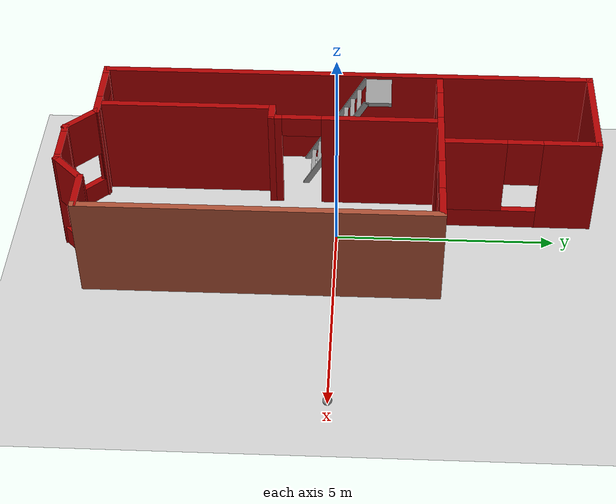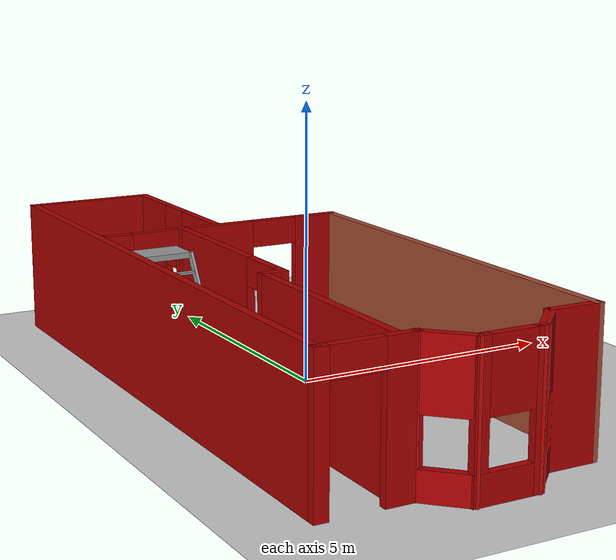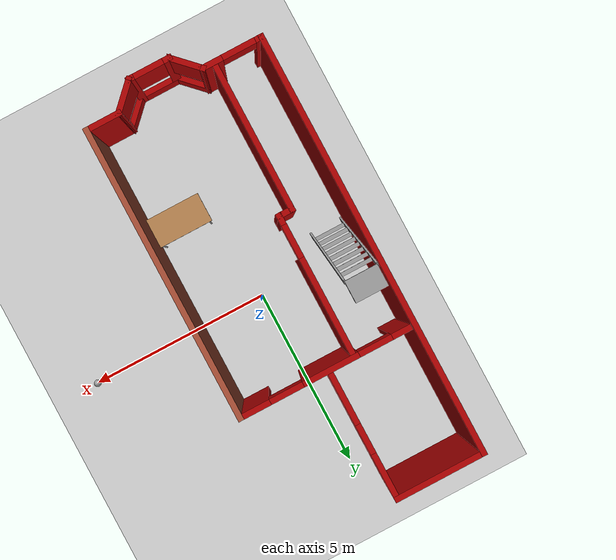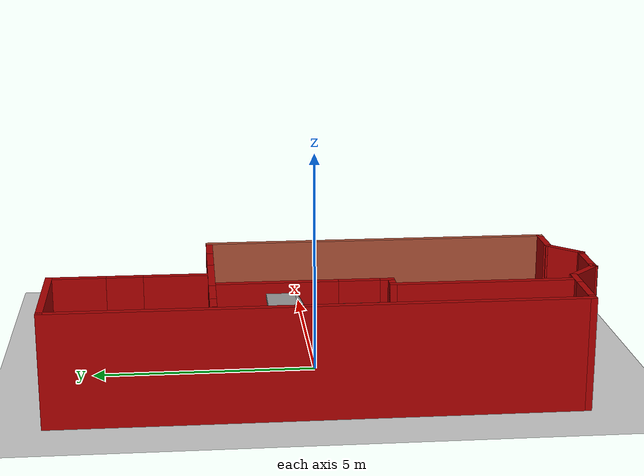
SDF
<sdf version="1.4">
 <world name="default">
  <include><uri>model://ground_plane</uri></include>
  <light type="directional" name="sun_high">
   <pose>0 0 10 0 -0.5 0</pose>
   <diffuse>0.8 0.8 0.8 1</diffuse>
   <specular>0.2 0.2 0.2 1</specular>
   <attenuation>
    <range>1000</range>
    <constant>0.9</constant>
    <linear>0.01</linear>
    <quadratic>0.001</quadratic>
   </attenuation>
   <direction>-0.5 0.1 -0.9</direction>
  </light>
  <include><uri>model://building_downstairs</uri></include>
  <include><uri>model://table</uri><static>true</static><pose>0.969 -2.728 0 0 0 0</pose></include>
  <include>
   <uri>model://ladder_60deg_0rails</uri>
   <static>true</static>
   <pose>-2.386 -0.795 0 0 0 0</pose>
  </include>
  <include><name>obstacle1</name><uri>model://whirly_obstacle</uri><pose>0 -0.8 0 0 0 0</pose></include>
  <include><name>obstacle2</name><uri>model://whirly_obstacle</uri><pose>-0.69 -2.45 0 0 0 0</pose></include>
  <include><uri>model://my_ball</uri><pose>5 0 0 0 0 0</pose></include>
 </world>
</sdf>

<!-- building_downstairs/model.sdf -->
<sdf version='1.6'>
  <model name='building_downstairs'>
    <pose frame=''>-0.558499 -0.181364 0 0 -0 0</pose>
    <link name='Wall_0'>
      <collision name='Wall_0_Collision'>
        <geometry>
          <box>
            <size>8 0.15 2.5</size>
          </box>
        </geometry>
        <pose frame=''>0 0 1.25 0 -0 0</pose>
      </collision>
      <visual name='Wall_0_Visual'>
        <pose frame=''>0 0 1.25 0 -0 0</pose>
        <geometry>
          <box>
            <size>8 0.15 2.5</size>
          </box>
        </geometry>
        <material>
          <script>
            <uri>file://media/materials/scripts/gazebo.material</uri>
            <name>Gazebo/Bricks</name>
          </script>
          <ambient>1 1 1 1</ambient>
        </material>
        <meta>
          <layer>0</layer>
        </meta>
      </visual>
      <pose frame=''>2.38842 -1.43226 0 0 0 -1.5708</pose>
    </link>
    <link name='Wall_1'>
      <collision name='Wall_1_Collision'>
        <geometry>
          <box>
            <size>1.01154 0.15 2.5</size>
          </box>
        </geometry>
        <pose frame=''>0 0 1.25 0 -0 0</pose>
      </collision>
      <visual name='Wall_1_Visual'>
        <pose frame=''>0 0 1.25 0 -0 0</pose>
        <geometry>
          <box>
            <size>1.01154 0.15 2.5</size>
          </box>
        </geometry>
        <material>
          <script>
            <uri>file://media/materials/scripts/gazebo.material</uri>
            <name>Gazebo/Grey</name>
          </script>
          <ambient>0.666667 0 0 1</ambient>
        </material>
        <meta>
          <layer>0</layer>
        </meta>
      </visual>
      <pose frame=''>1.94443 -5.3581 0 0 0 -3.13963</pose>
    </link>
    <link name='Wall_11'>
      <pose frame=''>0.088421 2.49274 0 0 -0 3.14159</pose>
      <visual name='Wall_11_Visual_0'>
        <pose frame=''>-1.92602 0 1.25 0 -0 0</pose>
        <geometry>
          <box>
            <size>0.897963 0.15 2.5</size>
          </box>
        </geometry>
        <material>
          <script>
            <uri>file://media/materials/scripts/gazebo.material</uri>
            <name>Gazebo/Grey</name>
          </script>
          <ambient>0.666667 0 0 1</ambient>
        </material>
        <meta>
          <layer>0</layer>
        </meta>
      </visual>
      <collision name='Wall_11_Collision_0'>
        <geometry>
          <box>
            <size>0.897963 0.15 2.5</size>
          </box>
        </geometry>
        <pose frame=''>-1.92602 0 1.25 0 -0 0</pose>
      </collision>
      <visual name='Wall_11_Visual_1'>
        <pose frame=''>0.186164 0 1.25 0 -0 0</pose>
        <geometry>
          <box>
            <size>1.5264 0.15 2.5</size>
          </box>
        </geometry>
        <material>
          <script>
            <uri>file://media/materials/scripts/gazebo.material</uri>
            <name>Gazebo/Grey</name>
          </script>
          <ambient>0.666667 0 0 1</ambient>
        </material>
        <meta>
          <layer>0</layer>
        </meta>
      </visual>
      <collision name='Wall_11_Collision_1'>
        <geometry>
          <box>
            <size>1.5264 0.15 2.5</size>
          </box>
        </geometry>
        <pose frame=''>0.186164 0 1.25 0 -0 0</pose>
      </collision>
      <visual name='Wall_11_Visual_2'>
        <pose frame=''>2.11218 0 1.25 0 -0 0</pose>
        <geometry>
          <box>
            <size>0.525634 0.15 2.5</size>
          </box>
        </geometry>
        <material>
          <script>
            <uri>file://media/materials/scripts/gazebo.material</uri>
            <name>Gazebo/Grey</name>
          </script>
          <ambient>0.666667 0 0 1</ambient>
        </material>
        <meta>
          <layer>0</layer>
        </meta>
      </visual>
      <collision name='Wall_11_Collision_2'>
        <geometry>
          <box>
            <size>0.525634 0.15 2.5</size>
          </box>
        </geometry>
        <pose frame=''>2.11218 0 1.25 0 -0 0</pose>
      </collision>
      <visual name='Wall_11_Visual_3'>
        <pose frame=''>-1.02704 0 2.25 0 -0 0</pose>
        <geometry>
          <box>
            <size>0.9 0.15 0.5</size>
          </box>
        </geometry>
        <material>
          <script>
            <uri>file://media/materials/scripts/gazebo.material</uri>
            <name>Gazebo/Grey</name>
          </script>
          <ambient>0.666667 0 0 1</ambient>
        </material>
        <meta>
          <layer>0</layer>
        </meta>
      </visual>
      <collision name='Wall_11_Collision_3'>
        <geometry>
          <box>
            <size>0.9 0.15 0.5</size>
          </box>
        </geometry>
        <pose frame=''>-1.02704 0 2.25 0 -0 0</pose>
      </collision>
      <visual name='Wall_11_Visual_4'>
        <pose frame=''>1.39937 0 2.25 0 -0 0</pose>
        <geometry>
          <box>
            <size>0.9 0.15 0.5</size>
          </box>
        </geometry>
        <material>
          <script>
            <uri>file://media/materials/scripts/gazebo.material</uri>
            <name>Gazebo/Grey</name>
          </script>
          <ambient>0.666667 0 0 1</ambient>
        </material>
        <meta>
          <layer>0</layer>
        </meta>
      </visual>
      <collision name='Wall_11_Collision_4'>
        <geometry>
          <box>
            <size>0.9 0.15 0.5</size>
          </box>
        </geometry>
        <pose frame=''>1.39937 0 2.25 0 -0 0</pose>
      </collision>
    </link>
    <link name='Wall_13'>
      <pose frame=''>-0.73199 0.568977 0 0 0 -1.5708</pose>
      <visual name='Wall_13_Visual_0'>
        <pose frame=''>-0.607949 0 1.25 0 -0 0</pose>
        <geometry>
          <box>
            <size>2.7841 0.15 2.5</size>
          </box>
        </geometry>
        <material>
          <script>
            <uri>file://media/materials/scripts/gazebo.material</uri>
            <name>Gazebo/Grey</name>
          </script>
          <ambient>0.666667 0 0 1</ambient>
        </material>
        <meta>
          <layer>0</layer>
        </meta>
      </visual>
      <collision name='Wall_13_Collision_0'>
        <geometry>
          <box>
            <size>2.7841 0.15 2.5</size>
          </box>
        </geometry>
        <pose frame=''>-0.607949 0 1.25 0 -0 0</pose>
      </collision>
      <visual name='Wall_13_Visual_1'>
        <pose frame=''>1.84205 0 1.25 0 -0 0</pose>
        <geometry>
          <box>
            <size>0.315898 0.15 2.5</size>
          </box>
        </geometry>
        <material>
          <script>
            <uri>file://media/materials/scripts/gazebo.material</uri>
            <name>Gazebo/Grey</name>
          </script>
          <ambient>0.666667 0 0 1</ambient>
        </material>
        <meta>
          <layer>0</layer>
        </meta>
      </visual>
      <collision name='Wall_13_Collision_1'>
        <geometry>
          <box>
            <size>0.315898 0.15 2.5</size>
          </box>
        </geometry>
        <pose frame=''>1.84205 0 1.25 0 -0 0</pose>
      </collision>
      <visual name='Wall_13_Visual_2'>
        <pose frame=''>1.2341 0 2.25 0 -0 0</pose>
        <geometry>
          <box>
            <size>0.9 0.15 0.5</size>
          </box>
        </geometry>
        <material>
          <script>
            <uri>file://media/materials/scripts/gazebo.material</uri>
            <name>Gazebo/Grey</name>
          </script>
          <ambient>0.666667 0 0 1</ambient>
        </material>
        <meta>
          <layer>0</layer>
        </meta>
      </visual>
      <collision name='Wall_13_Collision_2'>
        <geometry>
          <box>
            <size>0.9 0.15 0.5</size>
          </box>
        </geometry>
        <pose frame=''>1.2341 0 2.25 0 -0 0</pose>
      </collision>
    </link>
    <link name='Wall_14'>
      <collision name='Wall_14_Collision'>
        <geometry>
          <box>
            <size>0.5 0.15 2.5</size>
          </box>
        </geometry>
        <pose frame=''>0 0 1.25 0 -0 0</pose>
      </collision>
      <visual name='Wall_14_Visual'>
        <pose frame=''>0 0 1.25 0 -0 0</pose>
        <geometry>
          <box>
            <size>0.5 0.15 2.5</size>
          </box>
        </geometry>
        <material>
          <script>
            <uri>file://media/materials/scripts/gazebo.material</uri>
            <name>Gazebo/Grey</name>
          </script>
          <ambient>0.666667 0 0 1</ambient>
        </material>
        <meta>
          <layer>0</layer>
        </meta>
      </visual>
      <pose frame=''>-0.90699 -1.35602 0 0 -0 3.14159</pose>
    </link>
    <link name='Wall_15'>
      <collision name='Wall_15_Collision'>
        <geometry>
          <box>
            <size>4 0.15 2.5</size>
          </box>
        </geometry>
        <pose frame=''>0 0 1.25 0 -0 0</pose>
      </collision>
      <visual name='Wall_15_Visual'>
        <pose frame=''>0 0 1.25 0 -0 0</pose>
        <geometry>
          <box>
            <size>4 0.15 2.5</size>
          </box>
        </geometry>
        <material>
          <script>
            <uri>file://media/materials/scripts/gazebo.material</uri>
            <name>Gazebo/Grey</name>
          </script>
          <ambient>0.666667 0 0 1</ambient>
        </material>
        <meta>
          <layer>0</layer>
        </meta>
      </visual>
      <pose frame=''>-1.08199 -3.28102 0 0 0 -1.5708</pose>
    </link>
    <link name='Wall_2'>
      <pose frame=''>1.21314 -5.65947 0 0 0 -2.35619</pose>
      <visual name='Wall_2_Visual_0'>
        <pose frame=''>-0.446339 0 1.25 0 -0 0</pose>
        <geometry>
          <box>
            <size>0.107323 0.15 2.5</size>
          </box>
        </geometry>
        <material>
          <script>
            <uri>file://media/materials/scripts/gazebo.material</uri>
            <name>Gazebo/Grey</name>
          </script>
          <ambient>0.666667 0 0 1</ambient>
        </material>
        <meta>
          <layer>0</layer>
        </meta>
      </visual>
      <collision name='Wall_2_Collision_0'>
        <geometry>
          <box>
            <size>0.107323 0.15 2.5</size>
          </box>
        </geometry>
        <pose frame=''>-0.446339 0 1.25 0 -0 0</pose>
      </collision>
      <visual name='Wall_2_Visual_1'>
        <pose frame=''>0.053661 0 0.25 0 -0 0</pose>
        <geometry>
          <box>
            <size>0.892677 0.15 0.5</size>
          </box>
        </geometry>
        <material>
          <script>
            <uri>file://media/materials/scripts/gazebo.material</uri>
            <name>Gazebo/Grey</name>
          </script>
          <ambient>0.666667 0 0 1</ambient>
        </material>
        <meta>
          <layer>0</layer>
        </meta>
      </visual>
      <collision name='Wall_2_Collision_1'>
        <geometry>
          <box>
            <size>0.892677 0.15 0.5</size>
          </box>
        </geometry>
        <pose frame=''>0.053661 0 0.25 0 -0 0</pose>
      </collision>
      <visual name='Wall_2_Visual_2'>
        <pose frame=''>0.453661 0 1.5 0 -0 0</pose>
        <geometry>
          <box>
            <size>0.092677 0.15 2</size>
          </box>
        </geometry>
        <material>
          <script>
            <uri>file://media/materials/scripts/gazebo.material</uri>
            <name>Gazebo/Grey</name>
          </script>
          <ambient>0.666667 0 0 1</ambient>
        </material>
        <meta>
          <layer>0</layer>
        </meta>
      </visual>
      <collision name='Wall_2_Collision_2'>
        <geometry>
          <box>
            <size>0.092677 0.15 2</size>
          </box>
        </geometry>
        <pose frame=''>0.453661 0 1.5 0 -0 0</pose>
      </collision>
      <visual name='Wall_2_Visual_3'>
        <pose frame=''>0.007323 0 1.9 0 -0 0</pose>
        <geometry>
          <box>
            <size>0.8 0.15 1.2</size>
          </box>
        </geometry>
        <material>
          <script>
            <uri>file://media/materials/scripts/gazebo.material</uri>
            <name>Gazebo/Grey</name>
          </script>
          <ambient>0.666667 0 0 1</ambient>
        </material>
        <meta>
          <layer>0</layer>
        </meta>
      </visual>
      <collision name='Wall_2_Collision_3'>
        <geometry>
          <box>
            <size>0.8 0.15 1.2</size>
          </box>
        </geometry>
        <pose frame=''>0.007323 0 1.9 0 -0 0</pose>
      </collision>
    </link>
    <link name='Wall_3'>
      <pose frame=''>0.36262 -5.95999 0 0 -0 3.14159</pose>
      <visual name='Wall_3_Visual_0'>
        <pose frame=''>-0.521836 0 1.25 0 -0 0</pose>
        <geometry>
          <box>
            <size>0.206328 0.15 2.5</size>
          </box>
        </geometry>
        <material>
          <script>
            <uri>file://media/materials/scripts/gazebo.material</uri>
            <name>Gazebo/Grey</name>
          </script>
          <ambient>0.666667 0 0 1</ambient>
        </material>
        <meta>
          <layer>0</layer>
        </meta>
      </visual>
      <collision name='Wall_3_Collision_0'>
        <geometry>
          <box>
            <size>0.206328 0.15 2.5</size>
          </box>
        </geometry>
        <pose frame=''>-0.521836 0 1.25 0 -0 0</pose>
      </collision>
      <visual name='Wall_3_Visual_1'>
        <pose frame=''>0.103164 0 0.25 0 -0 0</pose>
        <geometry>
          <box>
            <size>1.04367 0.15 0.5</size>
          </box>
        </geometry>
        <material>
          <script>
            <uri>file://media/materials/scripts/gazebo.material</uri>
            <name>Gazebo/Grey</name>
          </script>
          <ambient>0.666667 0 0 1</ambient>
        </material>
        <meta>
          <layer>0</layer>
        </meta>
      </visual>
      <collision name='Wall_3_Collision_1'>
        <geometry>
          <box>
            <size>1.04367 0.15 0.5</size>
          </box>
        </geometry>
        <pose frame=''>0.103164 0 0.25 0 -0 0</pose>
      </collision>
      <visual name='Wall_3_Visual_2'>
        <pose frame=''>0.503164 0 1.5 0 -0 0</pose>
        <geometry>
          <box>
            <size>0.243672 0.15 2</size>
          </box>
        </geometry>
        <material>
          <script>
            <uri>file://media/materials/scripts/gazebo.material</uri>
            <name>Gazebo/Grey</name>
          </script>
          <ambient>0.666667 0 0 1</ambient>
        </material>
        <meta>
          <layer>0</layer>
        </meta>
      </visual>
      <collision name='Wall_3_Collision_2'>
        <geometry>
          <box>
            <size>0.243672 0.15 2</size>
          </box>
        </geometry>
        <pose frame=''>0.503164 0 1.5 0 -0 0</pose>
      </collision>
      <visual name='Wall_3_Visual_3'>
        <pose frame=''>-0.018672 0 1.9 0 -0 0</pose>
        <geometry>
          <box>
            <size>0.8 0.15 1.2</size>
          </box>
        </geometry>
        <material>
          <script>
            <uri>file://media/materials/scripts/gazebo.material</uri>
            <name>Gazebo/Grey</name>
          </script>
          <ambient>0.666667 0 0 1</ambient>
        </material>
        <meta>
          <layer>0</layer>
        </meta>
      </visual>
      <collision name='Wall_3_Collision_3'>
        <geometry>
          <box>
            <size>0.8 0.15 1.2</size>
          </box>
        </geometry>
        <pose frame=''>-0.018672 0 1.9 0 -0 0</pose>
      </collision>
    </link>
    <link name='Wall_4'>
      <pose frame=''>-0.4879 -5.65947 0 0 -0 2.35619</pose>
      <visual name='Wall_4_Visual_0'>
        <pose frame=''>-0.466865 0 1.25 0 -0 0</pose>
        <geometry>
          <box>
            <size>0.066271 0.15 2.5</size>
          </box>
        </geometry>
        <material>
          <script>
            <uri>file://media/materials/scripts/gazebo.material</uri>
            <name>Gazebo/Grey</name>
          </script>
          <ambient>0.666667 0 0 1</ambient>
        </material>
        <meta>
          <layer>0</layer>
        </meta>
      </visual>
      <collision name='Wall_4_Collision_0'>
        <geometry>
          <box>
            <size>0.066271 0.15 2.5</size>
          </box>
        </geometry>
        <pose frame=''>-0.466865 0 1.25 0 -0 0</pose>
      </collision>
      <visual name='Wall_4_Visual_1'>
        <pose frame=''>0.033135 0 0.25 0 -0 0</pose>
        <geometry>
          <box>
            <size>0.933729 0.15 0.5</size>
          </box>
        </geometry>
        <material>
          <script>
            <uri>file://media/materials/scripts/gazebo.material</uri>
            <name>Gazebo/Grey</name>
          </script>
          <ambient>0.666667 0 0 1</ambient>
        </material>
        <meta>
          <layer>0</layer>
        </meta>
      </visual>
      <collision name='Wall_4_Collision_1'>
        <geometry>
          <box>
            <size>0.933729 0.15 0.5</size>
          </box>
        </geometry>
        <pose frame=''>0.033135 0 0.25 0 -0 0</pose>
      </collision>
      <visual name='Wall_4_Visual_2'>
        <pose frame=''>0.433135 0 1.5 0 -0 0</pose>
        <geometry>
          <box>
            <size>0.133729 0.15 2</size>
          </box>
        </geometry>
        <material>
          <script>
            <uri>file://media/materials/scripts/gazebo.material</uri>
            <name>Gazebo/Grey</name>
          </script>
          <ambient>0.666667 0 0 1</ambient>
        </material>
        <meta>
          <layer>0</layer>
        </meta>
      </visual>
      <collision name='Wall_4_Collision_2'>
        <geometry>
          <box>
            <size>0.133729 0.15 2</size>
          </box>
        </geometry>
        <pose frame=''>0.433135 0 1.5 0 -0 0</pose>
      </collision>
      <visual name='Wall_4_Visual_3'>
        <pose frame=''>-0.033729 0 1.9 0 -0 0</pose>
        <geometry>
          <box>
            <size>0.8 0.15 1.2</size>
          </box>
        </geometry>
        <material>
          <script>
            <uri>file://media/materials/scripts/gazebo.material</uri>
            <name>Gazebo/Grey</name>
          </script>
          <ambient>0.666667 0 0 1</ambient>
        </material>
        <meta>
          <layer>0</layer>
        </meta>
      </visual>
      <collision name='Wall_4_Collision_3'>
        <geometry>
          <box>
            <size>0.8 0.15 1.2</size>
          </box>
        </geometry>
        <pose frame=''>-0.033729 0 1.9 0 -0 0</pose>
      </collision>
    </link>
    <link name='Wall_5'>
      <pose frame=''>-1.58842 -5.35895 0 0 -0 3.14159</pose>
      <visual name='Wall_5_Visual_0'>
        <pose frame=''>-0.574229 0 1.25 0 -0 0</pose>
        <geometry>
          <box>
            <size>0.601543 0.15 2.5</size>
          </box>
        </geometry>
        <material>
          <script>
            <uri>file://media/materials/scripts/gazebo.material</uri>
            <name>Gazebo/Grey</name>
          </script>
          <ambient>0.666667 0 0 1</ambient>
        </material>
        <meta>
          <layer>0</layer>
        </meta>
      </visual>
      <collision name='Wall_5_Collision_0'>
        <geometry>
          <box>
            <size>0.601543 0.15 2.5</size>
          </box>
        </geometry>
        <pose frame=''>-0.574229 0 1.25 0 -0 0</pose>
      </collision>
      <visual name='Wall_5_Visual_1'>
        <pose frame=''>0.750771 0 1.25 0 -0 0</pose>
        <geometry>
          <box>
            <size>0.248457 0.15 2.5</size>
          </box>
        </geometry>
        <material>
          <script>
            <uri>file://media/materials/scripts/gazebo.material</uri>
            <name>Gazebo/Grey</name>
          </script>
          <ambient>0.666667 0 0 1</ambient>
        </material>
        <meta>
          <layer>0</layer>
        </meta>
      </visual>
      <collision name='Wall_5_Collision_1'>
        <geometry>
          <box>
            <size>0.248457 0.15 2.5</size>
          </box>
        </geometry>
        <pose frame=''>0.750771 0 1.25 0 -0 0</pose>
      </collision>
      <visual name='Wall_5_Visual_2'>
        <pose frame=''>0.176543 0 2.25 0 -0 0</pose>
        <geometry>
          <box>
            <size>0.9 0.15 0.5</size>
          </box>
        </geometry>
        <material>
          <script>
            <uri>file://media/materials/scripts/gazebo.material</uri>
            <name>Gazebo/Grey</name>
          </script>
          <ambient>0.666667 0 0 1</ambient>
        </material>
        <meta>
          <layer>0</layer>
        </meta>
      </visual>
      <collision name='Wall_5_Collision_2'>
        <geometry>
          <box>
            <size>0.9 0.15 0.5</size>
          </box>
        </geometry>
        <pose frame=''>0.176543 0 2.25 0 -0 0</pose>
      </collision>
    </link>
    <link name='Wall_6'>
      <collision name='Wall_6_Collision'>
        <geometry>
          <box>
            <size>11.5 0.15 2.5</size>
          </box>
        </geometry>
        <pose frame=''>0 0 1.25 0 -0 0</pose>
      </collision>
      <visual name='Wall_6_Visual'>
        <pose frame=''>0 0 1.25 0 -0 0</pose>
        <geometry>
          <box>
            <size>11.5 0.15 2.5</size>
          </box>
        </geometry>
        <material>
          <script>
            <uri>file://media/materials/scripts/gazebo.material</uri>
            <name>Gazebo/Grey</name>
          </script>
          <ambient>0.666667 0 0 1</ambient>
        </material>
        <meta>
          <layer>0</layer>
        </meta>
      </visual>
      <pose frame=''>-2.38842 0.316053 0 0 -0 1.5708</pose>
    </link>
    <link name='Wall_7'>
      <collision name='Wall_7_Collision'>
        <geometry>
          <box>
            <size>2.5 0.15 2.5</size>
          </box>
        </geometry>
        <pose frame=''>0 0 1.25 0 -0 0</pose>
      </collision>
      <visual name='Wall_7_Visual'>
        <pose frame=''>0 0 1.25 0 -0 0</pose>
        <geometry>
          <box>
            <size>2.5 0.15 2.5</size>
          </box>
        </geometry>
        <material>
          <script>
            <uri>file://media/materials/scripts/gazebo.material</uri>
            <name>Gazebo/Grey</name>
          </script>
          <ambient>0.666667 0 0 1</ambient>
        </material>
        <meta>
          <layer>0</layer>
        </meta>
      </visual>
      <pose frame=''>-1.21342 5.99105 0 0 -0 0</pose>
    </link>
    <link name='Wall_8'>
      <pose frame=''>-0.03842 4.31605 0 0 0 -1.5708</pose>
      <visual name='Wall_8_Visual_0'>
        <pose frame=''>-1.0977 0 1.25 0 -0 0</pose>
        <geometry>
          <box>
            <size>1.30459 0.15 2.5</size>
          </box>
        </geometry>
        <material>
          <script>
            <uri>file://media/materials/scripts/gazebo.material</uri>
            <name>Gazebo/Grey</name>
          </script>
          <ambient>0.666667 0 0 1</ambient>
        </material>
        <meta>
          <layer>0</layer>
        </meta>
      </visual>
      <collision name='Wall_8_Collision_0'>
        <geometry>
          <box>
            <size>1.30459 0.15 2.5</size>
          </box>
        </geometry>
        <pose frame=''>-1.0977 0 1.25 0 -0 0</pose>
      </collision>
      <visual name='Wall_8_Visual_1'>
        <pose frame=''>0.652295 0 0.25 0 -0 0</pose>
        <geometry>
          <box>
            <size>2.19541 0.15 0.5</size>
          </box>
        </geometry>
        <material>
          <script>
            <uri>file://media/materials/scripts/gazebo.material</uri>
            <name>Gazebo/Grey</name>
          </script>
          <ambient>0.666667 0 0 1</ambient>
        </material>
        <meta>
          <layer>0</layer>
        </meta>
      </visual>
      <collision name='Wall_8_Collision_1'>
        <geometry>
          <box>
            <size>2.19541 0.15 0.5</size>
          </box>
        </geometry>
        <pose frame=''>0.652295 0 0.25 0 -0 0</pose>
      </collision>
      <visual name='Wall_8_Visual_2'>
        <pose frame=''>1.05229 0 1.5 0 -0 0</pose>
        <geometry>
          <box>
            <size>1.39541 0.15 2</size>
          </box>
        </geometry>
        <material>
          <script>
            <uri>file://media/materials/scripts/gazebo.material</uri>
            <name>Gazebo/Grey</name>
          </script>
          <ambient>0.666667 0 0 1</ambient>
        </material>
        <meta>
          <layer>0</layer>
        </meta>
      </visual>
      <collision name='Wall_8_Collision_2'>
        <geometry>
          <box>
            <size>1.39541 0.15 2</size>
          </box>
        </geometry>
        <pose frame=''>1.05229 0 1.5 0 -0 0</pose>
      </collision>
      <visual name='Wall_8_Visual_3'>
        <pose frame=''>-0.045409 0 1.9 0 -0 0</pose>
        <geometry>
          <box>
            <size>0.8 0.15 1.2</size>
          </box>
        </geometry>
        <material>
          <script>
            <uri>file://media/materials/scripts/gazebo.material</uri>
            <name>Gazebo/Grey</name>
          </script>
          <ambient>0.666667 0 0 1</ambient>
        </material>
        <meta>
          <layer>0</layer>
        </meta>
      </visual>
      <collision name='Wall_8_Collision_3'>
        <geometry>
          <box>
            <size>0.8 0.15 1.2</size>
          </box>
        </geometry>
        <pose frame=''>-0.045409 0 1.9 0 -0 0</pose>
      </collision>
    </link>
    <static>1</static>
  </model>
</sdf>

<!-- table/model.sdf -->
<sdf version="1.5">
  <model name="table">
    <static>true</static>
    <link name="link">
      <collision name="surface">
        <pose>0 0 1.0 0 0 0</pose>
        <geometry>
          <box>
            <size>1.5 0.8 0.03</size>
          </box>
        </geometry>
        <surface>
          <friction>
            <ode>
              <mu>0.6</mu>
              <mu2>0.6</mu2>
            </ode>
          </friction>
        </surface>
      </collision>
      <visual name="visual1">
        <pose>0 0 1.0 0 0 0</pose>
        <geometry>
          <box>
            <size>1.5 0.8 0.03</size>
          </box>
        </geometry>
        <material>
          <script>
            <uri>model://media/materials/scripts/gazebo.material</uri>
            <name>Gazebo/Wood</name>
          </script>
        </material>
      </visual>
      <collision name="front_left_leg">
        <pose>0.68 0.38 0.5 0 0 0</pose>
        <geometry>
          <cylinder>
            <radius>0.02</radius>
            <length>1.0</length>
          </cylinder>
        </geometry>
      </collision>
      <visual name="front_left_leg">
        <pose>0.68 0.38 0.5 0 0 0</pose>
        <geometry>
          <cylinder>
            <radius>0.02</radius>
            <length>1.0</length>
          </cylinder>
        </geometry>
        <material>
          <script>
            <uri>model://media/materials/scripts/gazebo.material</uri>
            <name>Gazebo/Grey</name>
          </script>
        </material>
      </visual>
      <collision name="front_right_leg">
        <pose>0.68 -0.38 0.5 0 0 0</pose>
        <geometry>
          <cylinder>
            <radius>0.02</radius>
            <length>1.0</length>
          </cylinder>
        </geometry>
      </collision>
      <visual name="front_right_leg">
        <pose>0.68 -0.38 0.5 0 0 0</pose>
        <geometry>
          <cylinder>
            <radius>0.02</radius>
            <length>1.0</length>
          </cylinder>
        </geometry>
        <material>
          <script>
            <uri>model://media/materials/scripts/gazebo.material</uri>
            <name>Gazebo/Grey</name>
          </script>
        </material>
      </visual>
      <collision name="back_right_leg">
        <pose>-0.68 -0.38 0.5 0 0 0</pose>
        <geometry>
          <cylinder>
            <radius>0.02</radius>
            <length>1.0</length>
          </cylinder>
        </geometry>
      </collision>
      <visual name="back_right_leg">
        <pose>-0.68 -0.38 0.5 0 0 0</pose>
        <geometry>
          <cylinder>
            <radius>0.02</radius>
            <length>1.0</length>
          </cylinder>
        </geometry>
        <material>
          <script>
            <uri>model://media/materials/scripts/gazebo.material</uri>
            <name>Gazebo/Grey</name>
          </script>
        </material>
      </visual>
      <collision name="back_left_leg">
        <pose>-0.68 0.38 0.5 0 0 0</pose>
        <geometry>
          <cylinder>
            <radius>0.02</radius>
            <length>1.0</length>
          </cylinder>
        </geometry>
      </collision>
      <visual name="back_left_leg">
        <pose>-0.68 0.38 0.5 0 0 0</pose>
        <geometry>
          <cylinder>
            <radius>0.02</radius>
            <length>1.0</length>
          </cylinder>
        </geometry>
        <material>
          <script>
            <uri>model://media/materials/scripts/gazebo.material</uri>
            <name>Gazebo/Grey</name>
          </script>
        </material>
      </visual>
    </link>
  </model>
</sdf>

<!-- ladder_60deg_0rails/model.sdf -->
<sdf version="1.5">

  <model name= "ladder_60deg_0rails" >
    <static>true</static>
         <link name="step0" >
           <pose>0 0.15396007178390025 0.26666666666666666 0 0 0 </pose>
           <inertial>
             <mass> 9.7548192</mass>
             <inertia>
             <ixx> 0.009571241631672</ixx>
             <iyy> 0.6596303120915761</iyy>
             <izz> 0.666841521540096</izz>
             <ixy>0</ixy>
             <ixz>0</ixz>
             <iyz>0</iyz>
             </inertia>
           </inertial>

           <collision name="collision">
             <geometry>
              <box>
                <size>  0.9  0.1016  0.0381  </size>
              </box>
             </geometry>
           </collision>

          <visual name="visual">
            <geometry>
              <box>
                <size>  0.9  0.1016  0.0381  </size>
              </box>
            </geometry>
            <material>
              <script>
                <uri>file://media/materials/scripts/gazebo.material</uri>
                <name>Gazebo/Grey</name>
              </script>
            </material>
          </visual>
        </link>
         <link name="step1" >
           <pose>0 0.3079201435678005 0.5333333333333333 0 0 0 </pose>
           <inertial>
             <mass> 9.7548192</mass>
             <inertia>
             <ixx> 0.009571241631672</ixx>
             <iyy> 0.6596303120915761</iyy>
             <izz> 0.666841521540096</izz>
             <ixy>0</ixy>
             <ixz>0</ixz>
             <iyz>0</iyz>
             </inertia>
           </inertial>

           <collision name="collision">
             <geometry>
              <box>
                <size>  0.9  0.1016  0.0381  </size>
              </box>
             </geometry>
           </collision>

          <visual name="visual">
            <geometry>
              <box>
                <size>  0.9  0.1016  0.0381  </size>
              </box>
            </geometry>
            <material>
              <script>
                <uri>file://media/materials/scripts/gazebo.material</uri>
                <name>Gazebo/Grey</name>
              </script>
            </material>
          </visual>
        </link>
         <link name="step2" >
           <pose>0 0.46188021535170076 0.8 0 0 0 </pose>
           <inertial>
             <mass> 9.7548192</mass>
             <inertia>
             <ixx> 0.009571241631672</ixx>
             <iyy> 0.6596303120915761</iyy>
             <izz> 0.666841521540096</izz>
             <ixy>0</ixy>
             <ixz>0</ixz>
             <iyz>0</iyz>
             </inertia>
           </inertial>

           <collision name="collision">
             <geometry>
              <box>
                <size>  0.9  0.1016  0.0381  </size>
              </box>
             </geometry>
           </collision>

          <visual name="visual">
            <geometry>
              <box>
                <size>  0.9  0.1016  0.0381  </size>
              </box>
            </geometry>
            <material>
              <script>
                <uri>file://media/materials/scripts/gazebo.material</uri>
                <name>Gazebo/Grey</name>
              </script>
            </material>
          </visual>
        </link>
         <link name="step3" >
           <pose>0 0.615840287135601 1.0666666666666667 0 0 0 </pose>
           <inertial>
             <mass> 9.7548192</mass>
             <inertia>
             <ixx> 0.009571241631672</ixx>
             <iyy> 0.6596303120915761</iyy>
             <izz> 0.666841521540096</izz>
             <ixy>0</ixy>
             <ixz>0</ixz>
             <iyz>0</iyz>
             </inertia>
           </inertial>

           <collision name="collision">
             <geometry>
              <box>
                <size>  0.9  0.1016  0.0381  </size>
              </box>
             </geometry>
           </collision>

          <visual name="visual">
            <geometry>
              <box>
                <size>  0.9  0.1016  0.0381  </size>
              </box>
            </geometry>
            <material>
              <script>
                <uri>file://media/materials/scripts/gazebo.material</uri>
                <name>Gazebo/Grey</name>
              </script>
            </material>
          </visual>
        </link>
         <link name="step4" >
           <pose>0 0.7698003589195013 1.3333333333333333 0 0 0 </pose>
           <inertial>
             <mass> 9.7548192</mass>
             <inertia>
             <ixx> 0.009571241631672</ixx>
             <iyy> 0.6596303120915761</iyy>
             <izz> 0.666841521540096</izz>
             <ixy>0</ixy>
             <ixz>0</ixz>
             <iyz>0</iyz>
             </inertia>
           </inertial>

           <collision name="collision">
             <geometry>
              <box>
                <size>  0.9  0.1016  0.0381  </size>
              </box>
             </geometry>
           </collision>

          <visual name="visual">
            <geometry>
              <box>
                <size>  0.9  0.1016  0.0381  </size>
              </box>
            </geometry>
            <material>
              <script>
                <uri>file://media/materials/scripts/gazebo.material</uri>
                <name>Gazebo/Grey</name>
              </script>
            </material>
          </visual>
        </link>
         <link name="step5" >
           <pose>0 0.9237604307034015 1.6 0 0 0 </pose>
           <inertial>
             <mass> 9.7548192</mass>
             <inertia>
             <ixx> 0.009571241631672</ixx>
             <iyy> 0.6596303120915761</iyy>
             <izz> 0.666841521540096</izz>
             <ixy>0</ixy>
             <ixz>0</ixz>
             <iyz>0</iyz>
             </inertia>
           </inertial>

           <collision name="collision">
             <geometry>
              <box>
                <size>  0.9  0.1016  0.0381  </size>
              </box>
             </geometry>
           </collision>

          <visual name="visual">
            <geometry>
              <box>
                <size>  0.9  0.1016  0.0381  </size>
              </box>
            </geometry>
            <material>
              <script>
                <uri>file://media/materials/scripts/gazebo.material</uri>
                <name>Gazebo/Grey</name>
              </script>
            </material>
          </visual>
        </link>
         <link name="step6" >
           <pose>0 1.0777205024873018 1.8666666666666667 0 0 0 </pose>
           <inertial>
             <mass> 9.7548192</mass>
             <inertia>
             <ixx> 0.009571241631672</ixx>
             <iyy> 0.6596303120915761</iyy>
             <izz> 0.666841521540096</izz>
             <ixy>0</ixy>
             <ixz>0</ixz>
             <iyz>0</iyz>
             </inertia>
           </inertial>

           <collision name="collision">
             <geometry>
              <box>
                <size>  0.9  0.1016  0.0381  </size>
              </box>
             </geometry>
           </collision>

          <visual name="visual">
            <geometry>
              <box>
                <size>  0.9  0.1016  0.0381  </size>
              </box>
            </geometry>
            <material>
              <script>
                <uri>file://media/materials/scripts/gazebo.material</uri>
                <name>Gazebo/Grey</name>
              </script>
            </material>
          </visual>
        </link>
         <link name="step7" >
           <pose>0 1.231680574271202 2.1333333333333333 0 0 0 </pose>
           <inertial>
             <mass> 9.7548192</mass>
             <inertia>
             <ixx> 0.009571241631672</ixx>
             <iyy> 0.6596303120915761</iyy>
             <izz> 0.666841521540096</izz>
             <ixy>0</ixy>
             <ixz>0</ixz>
             <iyz>0</iyz>
             </inertia>
           </inertial>

           <collision name="collision">
             <geometry>
              <box>
                <size>  0.9  0.1016  0.0381  </size>
              </box>
             </geometry>
           </collision>

          <visual name="visual">
            <geometry>
              <box>
                <size>  0.9  0.1016  0.0381  </size>
              </box>
            </geometry>
            <material>
              <script>
                <uri>file://media/materials/scripts/gazebo.material</uri>
                <name>Gazebo/Grey</name>
              </script>
            </material>
          </visual>
        </link>
    <link name="landing">
      <pose>0 1.6856406460551023 2.4 0 0 0 </pose>
        <inertial>
          <mass> 57.607200000000006</mass>
          <inertia>
          <ixx> 1.735184598966</ixx>
          <iyy> 3.8954545989660008</iyy>
          <izz> 5.616702</izz>
          <ixy>0</ixy>
          <ixz>0</ixz>
          <iyz>0</iyz>
          </inertia>
        </inertial>

        <collision name="collision">
          <geometry>
           <box>
             <size> 0.9 0.6 0.1016</size>
           </box>
          </geometry>
        </collision>

        <visual name="visual">
          <geometry>
            <box>
             <size> 0.9 0.6 0.1016</size>
            </box>
          </geometry>
          <material>
            <script>
              <uri>file://media/materials/scripts/gazebo.material</uri>
              <name>Gazebo/Grey</name>
            </script>
          </material>
        </visual>
    </link>

      <link name="left_side_wall" >
        <pose>-0.45 0.6928203230275511 1.2 1.0471975511965976 0 0 </pose>
        <collision name="collision">
          <geometry>
            <box>
              <size> 0.0508  2.851281292110204  0.13 </size>
            </box>
          </geometry>
        </collision>

        <visual name="visual">
          <geometry>
            <box>
              <size> 0.0508  2.851281292110204  0.13 </size>
            </box>
          </geometry>
          <material>
            <script>
              <uri>file://media/materials/scripts/gazebo.material</uri>
              <name>Gazebo/Grey</name>
            </script>
          </material>
        </visual>

      </link>
      <link name="right_side_wall" >
        <pose>0.45 0.6928203230275511 1.2 1.0471975511965976 0 0 </pose>
        <collision name="collision">
          <geometry>
            <box>
              <size> 0.0508  2.851281292110204  0.13 </size>
            </box>
          </geometry>
        </collision>

        <visual name="visual">
          <geometry>
            <box>
              <size> 0.0508  2.851281292110204  0.13 </size>
            </box>
          </geometry>
          <material>
            <script>
              <uri>file://media/materials/scripts/gazebo.material</uri>
              <name>Gazebo/Grey</name>
            </script>
          </material>
        </visual>

      </link>

  </model>
</sdf>

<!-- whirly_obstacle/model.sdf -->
<sdf version='1.6'>
  <model name='whirly_obstacle'>
    <link name='link_0'>
      <inertial>
        <mass>10</mass>
        <inertia>
          <ixx>0.145833</ixx>
          <ixy>0</ixy>
          <ixz>0</ixz>
          <iyy>0.145833</iyy>
          <iyz>0</iyz>
          <izz>0.125</izz>
        </inertia>
        <pose frame=''>0 0 0 0 -0 0</pose>
      </inertial>
      <pose frame=''>0.265331 0.013333 -0.1775 0 -0 0</pose>
      <gravity>1</gravity>
      <self_collide>0</self_collide>
      <kinematic>0</kinematic>
      <enable_wind>0</enable_wind>
      <visual name='visual'>
        <pose frame=''>0 0 0 0 -0 0</pose>
        <geometry>
          <cylinder>
            <radius>0.07</radius>
            <length>0.05</length>
          </cylinder>
        </geometry>
        <material>
          <lighting>1</lighting>
          <script>
            <uri>file://media/materials/scripts/gazebo.material</uri>
            <name>Gazebo/Grey</name>
          </script>
          <shader type='pixel'>
            <normal_map>__default__</normal_map>
          </shader>
          <ambient>0.5 0.2 0.7 1</ambient>
          <diffuse>0.7 0.7 0.7 1</diffuse>
          <specular>0.01 0.01 0.01 1</specular>
          <emissive>0 0 0 1</emissive>
        </material>
        <transparency>0</transparency>
        <cast_shadows>1</cast_shadows>
      </visual>
      <collision name='collision'>
        <laser_retro>0</laser_retro>
        <max_contacts>10</max_contacts>
        <pose frame=''>0 0 0 0 -0 0</pose>
        <geometry>
          <cylinder>
            <radius>0.07</radius>
            <length>0.05</length>
          </cylinder>
        </geometry>
        <surface>
          <friction>
            <ode>
              <mu>1</mu>
              <mu2>1</mu2>
              <fdir1>0 0 0</fdir1>
              <slip1>0</slip1>
              <slip2>0</slip2>
            </ode>
            <torsional>
              <coefficient>1</coefficient>
              <patch_radius>0</patch_radius>
              <surface_radius>0</surface_radius>
              <use_patch_radius>1</use_patch_radius>
              <ode>
                <slip>0</slip>
              </ode>
            </torsional>
          </friction>
          <bounce>
            <restitution_coefficient>0</restitution_coefficient>
            <threshold>1e+06</threshold>
          </bounce>
          <contact>
            <collide_without_contact>0</collide_without_contact>
            <collide_without_contact_bitmask>1</collide_without_contact_bitmask>
            <collide_bitmask>1</collide_bitmask>
            <ode>
              <soft_cfm>0</soft_cfm>
              <soft_erp>0.2</soft_erp>
              <kp>1e+13</kp>
              <kd>1</kd>
              <max_vel>0.01</max_vel>
              <min_depth>0</min_depth>
            </ode>
            <bullet>
              <split_impulse>1</split_impulse>
              <split_impulse_penetration_threshold>-0.01</split_impulse_penetration_threshold>
              <soft_cfm>0</soft_cfm>
              <soft_erp>0.2</soft_erp>
              <kp>1e+13</kp>
              <kd>1</kd>
            </bullet>
          </contact>
        </surface>
      </collision>
    </link>
    <link name='link_1'>
      <inertial>
        <mass>1</mass>
        <inertia>
          <ixx>0.145833</ixx>
          <ixy>0</ixy>
          <ixz>0</ixz>
          <iyy>0.145833</iyy>
          <iyz>0</iyz>
          <izz>0.125</izz>
        </inertia>
        <pose frame=''>0 0 0 0 -0 0</pose>
      </inertial>
      <pose frame=''>0.265331 0.013333 -0.1025 0 -0 0</pose>
      <gravity>1</gravity>
      <self_collide>0</self_collide>
      <kinematic>0</kinematic>
      <enable_wind>0</enable_wind>
      <visual name='visual'>
        <pose frame=''>0 0 0 0 -0 0</pose>
        <geometry>
          <cylinder>
            <radius>0.02</radius>
            <length>0.1</length>
          </cylinder>
        </geometry>
        <material>
          <lighting>1</lighting>
          <script>
            <uri>file://media/materials/scripts/gazebo.material</uri>
            <name>Gazebo/Grey</name>
          </script>
          <shader type='pixel'>
            <normal_map>__default__</normal_map>
          </shader>
          <ambient>0.3 0.3 0.3 1</ambient>
          <diffuse>0.7 0.7 0.7 1</diffuse>
          <specular>0.01 0.01 0.01 1</specular>
          <emissive>0 0 0 1</emissive>
        </material>
        <transparency>0</transparency>
        <cast_shadows>1</cast_shadows>
      </visual>
      <collision name='collision'>
        <laser_retro>0</laser_retro>
        <max_contacts>10</max_contacts>
        <pose frame=''>0 0 0 0 -0 0</pose>
        <geometry>
          <cylinder>
            <radius>0.02</radius>
            <length>0.1</length>
          </cylinder>
        </geometry>
        <surface>
          <friction>
            <ode>
              <mu>1</mu>
              <mu2>1</mu2>
              <fdir1>0 0 0</fdir1>
              <slip1>0</slip1>
              <slip2>0</slip2>
            </ode>
            <torsional>
              <coefficient>1</coefficient>
              <patch_radius>0</patch_radius>
              <surface_radius>0</surface_radius>
              <use_patch_radius>1</use_patch_radius>
              <ode>
                <slip>0</slip>
              </ode>
            </torsional>
          </friction>
          <bounce>
            <restitution_coefficient>0</restitution_coefficient>
            <threshold>1e+06</threshold>
          </bounce>
          <contact>
            <collide_without_contact>0</collide_without_contact>
            <collide_without_contact_bitmask>1</collide_without_contact_bitmask>
            <collide_bitmask>1</collide_bitmask>
            <ode>
              <soft_cfm>0</soft_cfm>
              <soft_erp>0.2</soft_erp>
              <kp>1e+13</kp>
              <kd>1</kd>
              <max_vel>0.01</max_vel>
              <min_depth>0</min_depth>
            </ode>
            <bullet>
              <split_impulse>1</split_impulse>
              <split_impulse_penetration_threshold>-0.01</split_impulse_penetration_threshold>
              <soft_cfm>0</soft_cfm>
              <soft_erp>0.2</soft_erp>
              <kp>1e+13</kp>
              <kd>1</kd>
            </bullet>
          </contact>
        </surface>
      </collision>
    </link>
    <link name='link_2'>
      <inertial>
        <mass>1</mass>
        <inertia>
          <ixx>0.166667</ixx>
          <ixy>0</ixy>
          <ixz>0</ixz>
          <iyy>0.166667</iyy>
          <iyz>0</iyz>
          <izz>0.166667</izz>
        </inertia>
        <pose frame=''>0 0 0 0 -0 0</pose>
      </inertial>
      <pose frame=''>0.265331 0.013333 -0.0375 0 -0 0</pose>
      <gravity>1</gravity>
      <self_collide>0</self_collide>
      <kinematic>0</kinematic>
      <enable_wind>0</enable_wind>
      <visual name='visual'>
        <pose frame=''>0 0 0 0 -0 0</pose>
        <geometry>
          <box>
            <size>0.4 0.03 0.03</size>
          </box>
        </geometry>
        <material>
          <lighting>1</lighting>
          <script>
            <uri>file://media/materials/scripts/gazebo.material</uri>
            <name>Gazebo/Grey</name>
          </script>
          <shader type='pixel'>
            <normal_map>__default__</normal_map>
          </shader>
          <ambient>0.5 0.2 0.7 1</ambient>
          <diffuse>0.7 0.7 0.7 1</diffuse>
          <specular>0.01 0.01 0.01 1</specular>
          <emissive>0 0 0 1</emissive>
        </material>
        <transparency>0</transparency>
        <cast_shadows>1</cast_shadows>
      </visual>
      <collision name='collision'>
        <laser_retro>0</laser_retro>
        <max_contacts>10</max_contacts>
        <pose frame=''>0 0 0 0 -0 0</pose>
        <geometry>
          <box>
            <size>0.4 0.03 0.03</size>
          </box>
        </geometry>
        <surface>
          <friction>
            <ode>
              <mu>1</mu>
              <mu2>1</mu2>
              <fdir1>0 0 0</fdir1>
              <slip1>0</slip1>
              <slip2>0</slip2>
            </ode>
            <torsional>
              <coefficient>1</coefficient>
              <patch_radius>0</patch_radius>
              <surface_radius>0</surface_radius>
              <use_patch_radius>1</use_patch_radius>
              <ode>
                <slip>0</slip>
              </ode>
            </torsional>
          </friction>
          <bounce>
            <restitution_coefficient>0</restitution_coefficient>
            <threshold>1e+06</threshold>
          </bounce>
          <contact>
            <collide_without_contact>0</collide_without_contact>
            <collide_without_contact_bitmask>1</collide_without_contact_bitmask>
            <collide_bitmask>1</collide_bitmask>
            <ode>
              <soft_cfm>0</soft_cfm>
              <soft_erp>0.2</soft_erp>
              <kp>1e+13</kp>
              <kd>1</kd>
              <max_vel>0.01</max_vel>
              <min_depth>0</min_depth>
            </ode>
            <bullet>
              <split_impulse>1</split_impulse>
              <split_impulse_penetration_threshold>-0.01</split_impulse_penetration_threshold>
              <soft_cfm>0</soft_cfm>
              <soft_erp>0.2</soft_erp>
              <kp>1e+13</kp>
              <kd>1</kd>
            </bullet>
          </contact>
        </surface>
      </collision>
    </link>
    <joint name='fixed_base_JOINT' type='fixed'>
      <parent>link_0</parent>
      <child>link_1</child>
      <pose frame=''>0 0 0 0 -0 0</pose>
      <physics>
        <ode>
          <limit>
            <cfm>0</cfm>
            <erp>0.2</erp>
          </limit>
          <suspension>
            <cfm>0</cfm>
            <erp>0.2</erp>
          </suspension>
        </ode>
      </physics>
    </joint>
    <joint name='spin_JOINT' type='revolute'>
      <parent>link_1</parent>
      <child>link_2</child>
      <pose frame=''>0 0 0 0 -0 0</pose>
      <axis>
        <xyz>0 0 1</xyz>
        <use_parent_model_frame>0</use_parent_model_frame>
        <limit>
          <lower>-1.79769e+308</lower>
          <upper>1.79769e+308</upper>
          <effort>-1</effort>
          <velocity>-1</velocity>
        </limit>
        <dynamics>
          <spring_reference>0</spring_reference>
          <spring_stiffness>0</spring_stiffness>
          <damping>0</damping>
          <friction>0</friction>
        </dynamics>
      </axis>
      <physics>
        <ode>
          <limit>
            <cfm>0</cfm>
            <erp>0.2</erp>
          </limit>
          <suspension>
            <cfm>0</cfm>
            <erp>0.2</erp>
          </suspension>
        </ode>
      </physics>
    </joint>
    <static>0</static>
    <allow_auto_disable>1</allow_auto_disable>
  </model>
</sdf>

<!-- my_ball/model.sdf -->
<sdf version='1.6'>
  <model name='my_ball'>
    <link name='link_0'>
      <inertial>
        <mass>1</mass>
        <inertia>
          <ixx>0.1</ixx>
          <ixy>0</ixy>
          <ixz>0</ixz>
          <iyy>0.1</iyy>
          <iyz>0</iyz>
          <izz>0.1</izz>
        </inertia>
        <pose frame=''>0 0 0 0 -0 0</pose>
      </inertial>
      <pose frame=''>0 0 0.1 0 -0 0</pose>
      <gravity>1</gravity>
      <self_collide>0</self_collide>
      <kinematic>0</kinematic>
      <enable_wind>0</enable_wind>
      <visual name='visual'>
        <pose frame=''>0 0 0 0 -0 0</pose>
        <geometry>
          <sphere>
            <radius>0.1</radius>
          </sphere>
        </geometry>
        <material>
          <lighting>1</lighting>
          <script>
            <uri>file://media/materials/scripts/gazebo.material</uri>
            <name>Gazebo/Grey</name>
          </script>
          <shader type='vertex'>
            <normal_map>__default__</normal_map>
          </shader>
          <ambient>1 1 1 1</ambient>
          <diffuse>1 1 1 1</diffuse>
          <specular>1 1 1 1</specular>
          <emissive>1 1 1 1</emissive>
        </material>
        <transparency>0</transparency>
        <cast_shadows>1</cast_shadows>
      </visual>
      <collision name='collision'>
        <laser_retro>0</laser_retro>
        <max_contacts>10</max_contacts>
        <pose frame=''>0 0 0 0 -0 0</pose>
        <geometry>
          <sphere>
            <radius>0.1</radius>
          </sphere>
        </geometry>
        <surface>
          <friction>
            <ode>
              <mu>1</mu>
              <mu2>1</mu2>
              <fdir1>0 0 0</fdir1>
              <slip1>0</slip1>
              <slip2>0</slip2>
            </ode>
            <torsional>
              <coefficient>1</coefficient>
              <patch_radius>0</patch_radius>
              <surface_radius>0</surface_radius>
              <use_patch_radius>1</use_patch_radius>
              <ode>
                <slip>0</slip>
              </ode>
            </torsional>
          </friction>
          <bounce>
            <restitution_coefficient>0</restitution_coefficient>
            <threshold>1e+06</threshold>
          </bounce>
          <contact>
            <collide_without_contact>0</collide_without_contact>
            <collide_without_contact_bitmask>1</collide_without_contact_bitmask>
            <collide_bitmask>1</collide_bitmask>
            <ode>
              <soft_cfm>0</soft_cfm>
              <soft_erp>0.2</soft_erp>
              <kp>1e+13</kp>
              <kd>1</kd>
              <max_vel>0.01</max_vel>
              <min_depth>0</min_depth>
            </ode>
            <bullet>
              <split_impulse>1</split_impulse>
              <split_impulse_penetration_threshold>-0.01</split_impulse_penetration_threshold>
              <soft_cfm>0</soft_cfm>
              <soft_erp>0.2</soft_erp>
              <kp>1e+13</kp>
              <kd>1</kd>
            </bullet>
          </contact>
        </surface>
      </collision>
    </link>
    <static>0</static>
    <allow_auto_disable>1</allow_auto_disable>
  </model>
</sdf>
